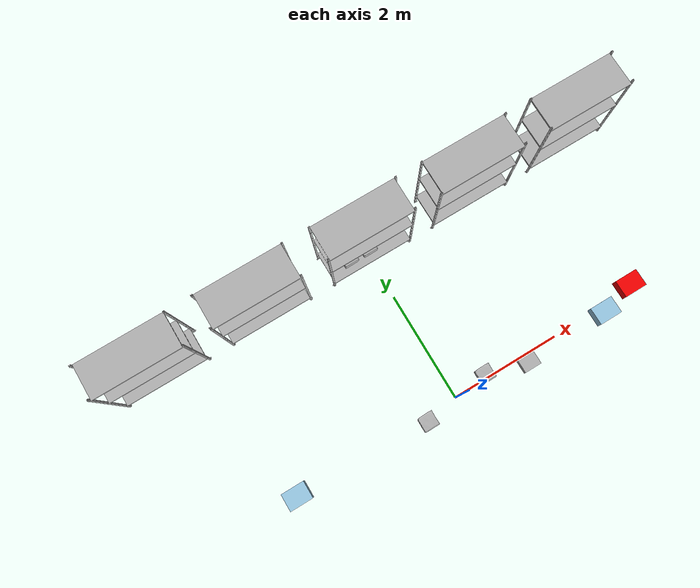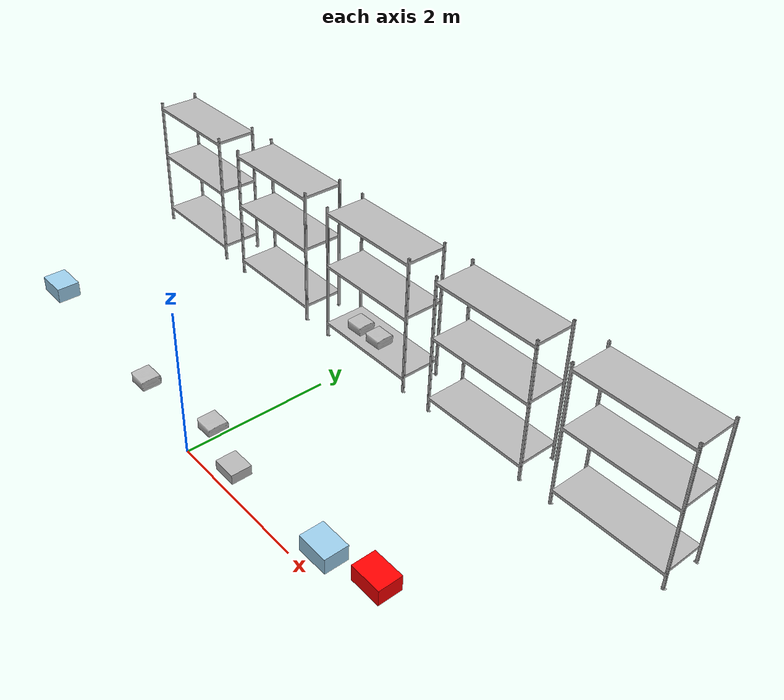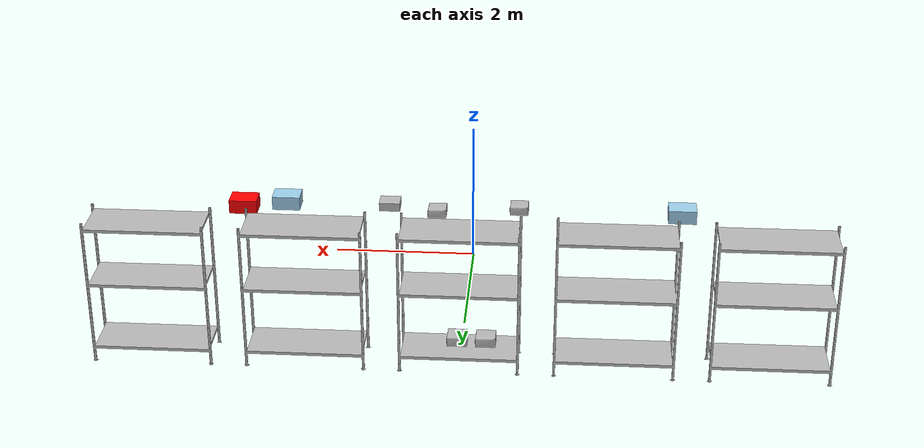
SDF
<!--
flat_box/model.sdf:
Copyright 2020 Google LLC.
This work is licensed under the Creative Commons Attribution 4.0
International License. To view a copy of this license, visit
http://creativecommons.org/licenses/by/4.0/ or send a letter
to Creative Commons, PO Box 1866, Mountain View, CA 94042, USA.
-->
<sdf version="1.9">
 <world name="BasicRoom">
  <physics type="ode"><max_step_size>0.02</max_step_size><real_time_factor>1.0</real_time_factor></physics>
  <plugin name="gz::sim::systems::Physics" filename="libgz-sim-physics-system.so"/>
  <plugin name="gz::sim::systems::UserCommands" filename="libgz-sim-user-commands-system.so"/>
  <plugin name="gz::sim::systems::SceneBroadcaster" filename="libgz-sim-scene-broadcaster-system.so"/>
  <plugin name="gz::sim::systems::Sensors" filename="libgz-sim-sensors-system.so">
   <render_engine>ogre2</render_engine>
  </plugin>
  <plugin name="gz::sim::systems::Imu" filename="libgz-sim-imu-system.so"/>
  <plugin name="gz::sim::systems::NavSat" filename="libgz-sim-navsat-system.so"/>
  <plugin name="gz::sim::systems::Contact" filename="libgz-sim-contact-system.so"/>
  <scene><ambient>1 1 1</ambient><grid>false</grid></scene>
  <light name="sun" type="directional">
   <pose>0 0 10 0 0 0</pose>
   <diffuse>0.8 0.8 0.8 1</diffuse>
   <specular>0.8 0.8 0.8 1</specular>
   <direction>-0.5 0.1 -0.9</direction>
  </light>
  <include><uri>model://shelf_type_a</uri><name>shelf_type_a_1</name><pose>0 3 0 0 0 0</pose></include>
  <include><uri>model://shelf_type_a</uri><name>shelf_type_a_2</name><pose>-2 3 0 0 0 0</pose></include>
  <include><uri>model://shelf_type_a</uri><name>shelf_type_a_3</name><pose>2 3 0 0 0 0</pose></include>
  <include><uri>model://shelf_type_a</uri><name>shelf_type_a_4</name><pose>4 3 0 0 0 0</pose></include>
  <include><uri>model://shelf_type_a</uri><name>shelf_type_a_5</name><pose>-4 3 0 0 0 0</pose></include>
  <include>
   <uri>model://flat_box</uri>
   <name>flat_box_1</name>
   <pose>0.5159 0.0714 0.6667 0.0019 0.0112 0</pose>
  </include>
  <include>
   <uri>model://damaged_box</uri>
   <name>damaged_box_1</name>
   <pose>1.2200 -0.1200 0.6678 0 0 0</pose>
  </include>
  <include>
   <uri>model://medium box</uri>
   <name>medium_box_1</name>
   <pose>-0.6602 -0.0930 0.6660 -0.0032 0.0138 0</pose>
  </include>
  <include>
   <uri>model://medium box</uri>
   <name>medium_box_2</name>
   <pose>-0.3365 2.9313 0.2525 -0.0032 0.0138 0</pose>
  </include>
  <include>
   <uri>model://medium box</uri>
   <name>medium_box_3</name>
   <pose>0.0352 2.9313 0.2525 -0.0032 0.0138 0</pose>
  </include>
  <include><uri>model://blue_box</uri><name>blue_box_1</name><pose>2.7200 -0.0800 0.6700 0 0 0</pose></include>
  <include><uri>model://red_box</uri><name>red_box_1</name><pose>3.3200 0.0800 0.6700 0 0 0</pose></include>
  <include><uri>model://blue_box</uri><name>blue_box_2</name><pose>-3.0000 0.0000 0.6700 0 0 0</pose></include>
 </world>
</sdf>

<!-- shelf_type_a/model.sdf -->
<sdf version="1.9">
  <model name="shelf_type_a">
    <static>false</static>

    <link name="estanteria_link">
      <pose>0 0 0 0 0 0</pose>

      <inertial>
        <pose>0 0 1.001000 0 0 0</pose>
        <mass>15.000</mass>
        <inertia>
          <ixx>5.475130</ixx>
          <ixy>0.0</ixy>
          <ixz>0.0</ixz>
          <iyy>8.170130</iyy>
          <iyz>0.0</iyz>
          <izz>3.625250</izz>
        </inertia>
      </inertial>

      <visual name="visual">
        <pose>0.121365 -0.813724 1.456763 0 0 0</pose>
        <geometry>
          <mesh>
            <uri>model://shelf_type_a/meshes/estanteria.dae</uri>
          </mesh>
        </geometry>
      </visual>

      <collision name="collision_1">
        <pose>-0.765000 -0.283500 0.015000 0 0 0</pose>
        <geometry>
          <box>
            <size>0.060000 0.043000 0.030000</size>
          </box>
        </geometry>
      </collision>

      <collision name="collision_2">
        <pose>-0.765000 0.283500 0.015000 0 0 0</pose>
        <geometry>
          <box>
            <size>0.060000 0.043000 0.030000</size>
          </box>
        </geometry>
      </collision>

      <collision name="collision_3">
        <pose>0.765000 -0.283500 0.015000 0 0 0</pose>
        <geometry>
          <box>
            <size>0.060000 0.043000 0.030000</size>
          </box>
        </geometry>
      </collision>

      <collision name="collision_4">
        <pose>0.765000 0.283500 0.015000 0 0 0</pose>
        <geometry>
          <box>
            <size>0.060000 0.043000 0.030000</size>
          </box>
        </geometry>
      </collision>

      <collision name="collision_5">
        <pose>-0.765000 -0.285000 1.002000 0 0 0</pose>
        <geometry>
          <box>
            <size>0.030000 0.030000 2.000000</size>
          </box>
        </geometry>
      </collision>

      <collision name="collision_6">
        <pose>-0.765000 0.285000 1.002000 0 0 0</pose>
        <geometry>
          <box>
            <size>0.030000 0.030000 2.000000</size>
          </box>
        </geometry>
      </collision>

      <collision name="collision_7">
        <pose>0.765000 -0.285000 1.002000 0 0 0</pose>
        <geometry>
          <box>
            <size>0.030000 0.030000 2.000000</size>
          </box>
        </geometry>
      </collision>

      <collision name="collision_8">
        <pose>0.765000 0.285000 1.002000 0 0 0</pose>
        <geometry>
          <box>
            <size>0.030000 0.030000 2.000000</size>
          </box>
        </geometry>
      </collision>

      <collision name="collision_9">
        <pose>0 0 0.213493 0 0 0</pose>
        <geometry>
          <box>
            <size>1.541180 0.610000 0.080000</size>
          </box>
        </geometry>
      </collision>

      <collision name="collision_10">
        <pose>0 0 1.125000 0 0 0</pose>
        <geometry>
          <box>
            <size>1.541180 0.610000 0.080000</size>
          </box>
        </geometry>
      </collision>

      <collision name="collision_11">
        <pose>0 0 1.910315 0 0 0</pose>
        <geometry>
          <box>
            <size>1.541180 0.610000 0.080000</size>
          </box>
        </geometry>
      </collision>
    </link>
  </model>
</sdf>

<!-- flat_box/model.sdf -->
<sdf version="1.6">
  <model name="flat_box">
    <link name="link_0">
      <visual name="visual">
        <geometry>
          <mesh>
            <uri>meshes/model.obj</uri>
          </mesh>
        </geometry>
      </visual>
      <collision name="collision_0">
        <geometry>
          <mesh>
            <uri>meshes/model.obj</uri>
          </mesh>
        </geometry>
      </collision>
    </link>
  </model>
</sdf>

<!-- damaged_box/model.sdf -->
<sdf version="1.9">
  <model name="damaged_box">
    <link name="link">
      <inertial>
        <pose>0 0 0.061829 0 0 0</pose>
        <mass>0.8</mass>
        <inertia>
          <ixx>0.005343</ixx>
          <ixy>0.0</ixy>
          <ixz>0.0</ixz>
          <iyy>0.007019</iyy>
          <iyz>0.0</iyz>
          <izz>0.010324</izz>
        </inertia>
      </inertial>
      <collision name="collision">
        <pose>0 0 0.061829 0 0 0</pose>
        <geometry>
          <mesh>
            <uri>meshes/damaged_box_collision_approx.stl</uri>
          </mesh>
        </geometry>
        <surface>
          <friction>
            <ode>
              <mu>1.0</mu>
              <mu2>1.0</mu2>
            </ode>
          </friction>
        </surface>
      </collision>
      <visual name="visual">
        <pose>0 0 0.061832 1.5708 0 0</pose>
        <geometry>
          <mesh>
            <uri>meshes/damaged_box.obj</uri>
            <scale>0.15 0.15 0.15</scale>
          </mesh>
        </geometry>
      </visual>
    </link>
  </model>
</sdf>

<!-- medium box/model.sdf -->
<sdf version="1.6">
  <model name="medium box">
    <link name="link_0">
      <visual name="visual">
        <geometry>
          <mesh>
            <uri>meshes/model.obj</uri>
          </mesh>
        </geometry>
      </visual>
      <collision name="collision_0">
        <geometry>
          <mesh>
            <uri>meshes/model.obj</uri>
          </mesh>
        </geometry>
      </collision>
    </link>
  </model>
</sdf>

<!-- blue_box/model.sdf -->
<sdf version="1.9">
  <model name="blue_box">
    <link name="link">
      <inertial>
        <mass>1.0</mass>
        <inertia>
          <ixx>0.0108333333</ixx>
          <ixy>0.0</ixy>
          <ixz>0.0</ixz>
          <iyy>0.0166666667</iyy>
          <iyz>0.0</iyz>
          <izz>0.0208333333</izz>
        </inertia>
      </inertial>
      <collision name="collision">
        <pose>0 0 0.1 0 0 0</pose>
        <geometry>
          <box>
            <size>0.4 0.3 0.2</size>
          </box>
        </geometry>
        <surface>
          <friction>
            <ode>
              <mu>1.0</mu>
              <mu2>1.0</mu2>
            </ode>
          </friction>
        </surface>
      </collision>
      <visual name="visual">
        <geometry>
          <mesh>
            <uri>meshes/blue_box.dae</uri>
          </mesh>
        </geometry>
      </visual>
    </link>
  </model>
</sdf>

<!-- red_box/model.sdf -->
<sdf version="1.9">
  <model name="red_box">
    <link name="link">
      <inertial>
        <mass>1.0</mass>
        <inertia>
          <ixx>0.0108333333</ixx>
          <ixy>0.0</ixy>
          <ixz>0.0</ixz>
          <iyy>0.0166666667</iyy>
          <iyz>0.0</iyz>
          <izz>0.0208333333</izz>
        </inertia>
      </inertial>
      <collision name="collision">
        <pose>0 0 0.1 0 0 0</pose>
        <geometry>
          <box>
            <size>0.4 0.3 0.2</size>
          </box>
        </geometry>
        <surface>
          <friction>
            <ode>
              <mu>1.0</mu>
              <mu2>1.0</mu2>
            </ode>
          </friction>
        </surface>
      </collision>
      <visual name="visual">
        <geometry>
          <mesh>
            <uri>meshes/red_box.dae</uri>
          </mesh>
        </geometry>
      </visual>
    </link>
  </model>
</sdf>
